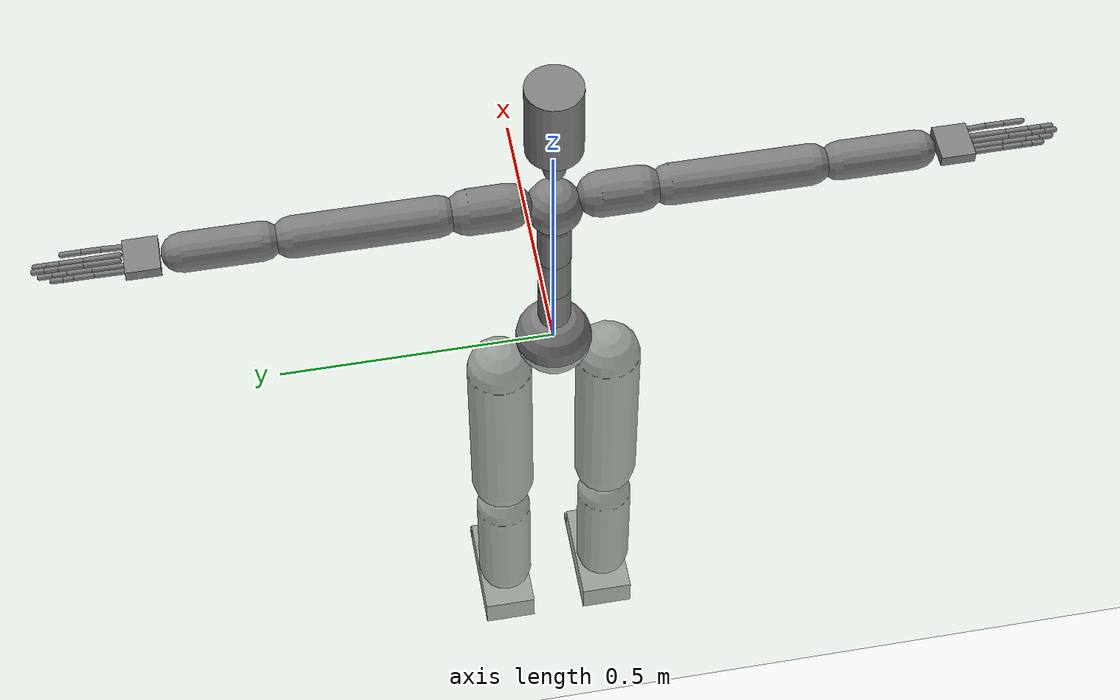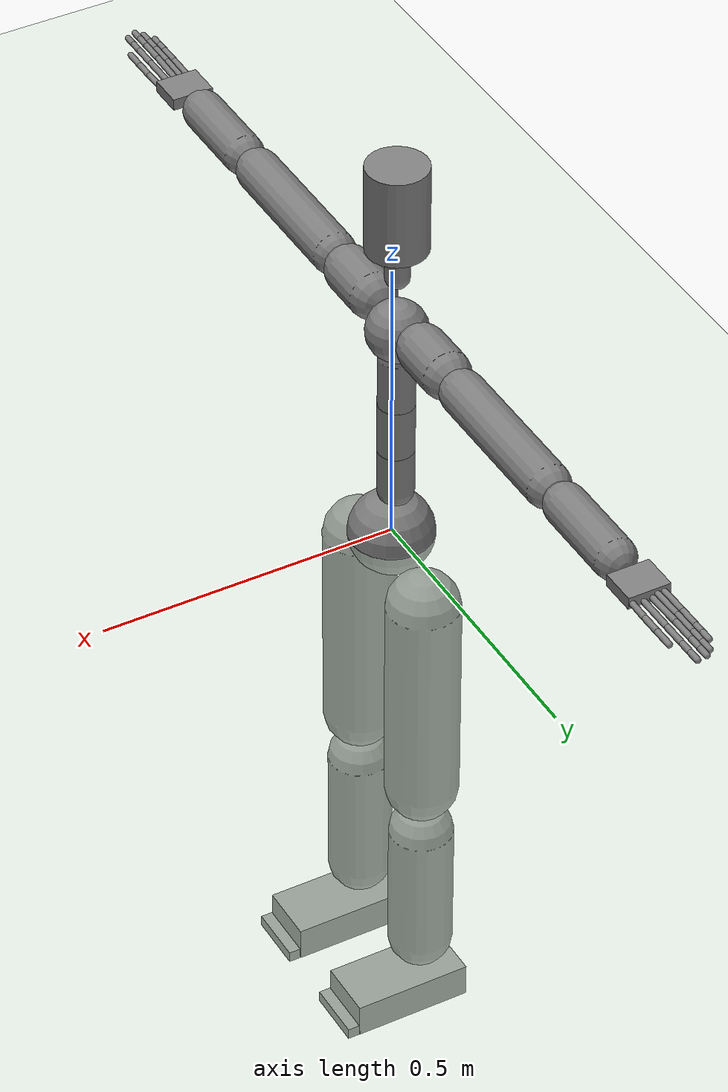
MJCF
<!-- change the damping from 50 to 500 -->
<mujoco model="humanoid">
  <compiler coordinate="local"/>
  <statistic extent="2" center="0 0 1"/>
  <option timestep="0.00555"/>
  <default>
    <motor ctrlrange="-1 1" ctrllimited="true"/>
    <geom type="capsule" condim="1" friction="1.0 0.05 0.05" solimp=".9 .99 .003" solref=".015 1"/>
    <joint type="hinge" damping="0.1" stiffness="5" armature=".007" limited="true" solimplimit="0 .99 .01"/>
    <site size=".04" group="3"/>
    <default class="force-torque">
      <site type="box" size=".01 .01 .02" rgba="1 0 0 1"/>
    </default>
    <default class="touch">
      <site type="capsule" rgba="0 0 1 .3"/>
    </default>
  </default>
  <asset>
    <texture type="skybox" builtin="gradient" rgb1=".4 .5 .6" rgb2="0 0 0" width="100" height="100"/>
    <texture builtin="flat" height="1278" mark="cross" markrgb="1 1 1" name="texgeom" random="0.01" rgb1="0.8 0.6 0.4" rgb2="0.8 0.6 0.4" type="cube" width="127"/>
    <texture builtin="checker" height="100" name="texplane" rgb1="0 0 0" rgb2="0.8 0.8 0.8" type="2d" width="100"/>
    <material name="MatPlane" reflectance="0.5" shininess="1" specular="1" texrepeat="60 60" texture="texplane"/>
    <material name="geom" texture="texgeom" texuniform="true"/>
  </asset>
  <worldbody>
    <light cutoff="100" diffuse="1 1 1" dir="-0 0 -1.3" directional="true" exponent="1" pos="0 0 1.3" specular=".1 .1 .1"/>
    <geom conaffinity="1" condim="3" name="floor" pos="0 0 0" rgba="0.8 0.9 0.8 1" size="100 100 .2" type="plane" material="MatPlane"/>
    <body name="pHipOrigin" pos="0 0 0">
      <freejoint name="pHipOrigin"/>
      <geom type="sphere" contype="1" conaffinity="1" density="4629.6296296296305" size="0.07011" pos="0.0000 0.0000 -0.0000"/>
      <body name="jL5S1" pos="-0.006892980970589783 0.0 0.062036653819790066">
        <geom type="capsule" contype="1" conaffinity="1" density="1000" fromto="0 0 0.02 0.0 0.0 0.09731791168451309" size="0.03"/>
        <joint name="jL5S1_x" type="hinge" pos="0 0 0" axis="1 0 0" stiffness="500" damping="500" armature="0.02" range="-180.0000 180.0000"/>
        <joint name="jL5S1_y" type="hinge" pos="0 0 0" axis="0 1 0" stiffness="500" damping="500" armature="0.02" range="-180.0000 180.0000"/>
        <joint name="jL5S1_z" type="hinge" pos="0 0 0" axis="0 0 1" stiffness="500" damping="500" armature="0.02" range="-180.0000 180.0000"/>
        <body name="jL4L3" pos="0.0 0.0 0.09731791168451309">
          <geom type="capsule" contype="1" conaffinity="1" density="1000" fromto="0 0 0 -0.0006850716177388439 0.0 0.08879742665058449" size="0.03"/>
          <joint name="jL4L3_x" type="hinge" pos="0 0 0" axis="1 0 0" stiffness="500" damping="500" armature="0.02" range="-180.0000 180.0000"/>
          <joint name="jL4L3_y" type="hinge" pos="0 0 0" axis="0 1 0" stiffness="500" damping="500" armature="0.02" range="-180.0000 180.0000"/>
          <joint name="jL4L3_z" type="hinge" pos="0 0 0" axis="0 0 1" stiffness="500" damping="500" armature="0.02" range="-180.0000 180.0000"/>
          <body name="jL1T12" pos="-0.0006850716177388439 0.0 0.08879742665058449">
            <geom type="capsule" contype="1" conaffinity="1" density="1000" fromto="0 0 0 -0.0006888228256989536 0.0 0.08911009664929612" size="0.03"/>
            <joint name="jL1T12_x" type="hinge" pos="0 0 0" axis="1 0 0" stiffness="500" damping="500" armature="0.02" range="-180.0000 180.0000"/>
            <joint name="jL1T12_y" type="hinge" pos="0 0 0" axis="0 1 0" stiffness="500" damping="500" armature="0.02" range="-180.0000 180.0000"/>
            <joint name="jL1T12_z" type="hinge" pos="0 0 0" axis="0 0 1" stiffness="500" damping="500" armature="0.02" range="-180.0000 180.0000"/>
            <body name="jT9T8" pos="-0.0006888228256989536 0.0 0.08911009664929612">
              <geom type="sphere" contype="1" conaffinity="1" density="1000" size="0.05011" pos="0.0000 0.0000 0.050000"/>
              <joint name="jT9T8_x" type="hinge" pos="0 0 0" axis="1 0 0" stiffness="500" damping="500" armature="0.02" range="-180.0000 180.0000"/>
              <joint name="jT9T8_y" type="hinge" pos="0 0 0" axis="0 1 0" stiffness="500" damping="500" armature="0.02" range="-180.0000 180.0000"/>
              <joint name="jT9T8_z" type="hinge" pos="0 0 0" axis="0 0 1" stiffness="500" damping="500" armature="0.02" range="-180.0000 180.0000"/>
              <body name="jT1C7" pos="0.0 0.0 0.12090200185775757">
                <geom type="capsule" contype="1" conaffinity="1" density="1000" fromto="0 0 0.03 0.0009755110367244263 0.0 0.0826871084277397" size="0.02"/>
                <joint name="jT1C7_x" type="hinge" pos="0 0 0" axis="1 0 0" stiffness="500" damping="500" armature="0.02" range="-180.0000 180.0000"/>
                <joint name="jT1C7_y" type="hinge" pos="0 0 0" axis="0 1 0" stiffness="500" damping="500" armature="0.02" range="-180.0000 180.0000"/>
                <joint name="jT1C7_z" type="hinge" pos="0 0 0" axis="0 0 1" stiffness="500" damping="500" armature="0.02" range="-180.0000 180.0000"/>
                <body name="jC1Head" pos="0.0009755110367244263 0.0 0.0826871084277397">
                  <geom type="cylinder" contype="1" conaffinity="1" density="1000" fromto="0 0 0 0 0 0.15" size="0.05"/>
                  <joint name="jC1Head_x" type="hinge" pos="0 0 0" axis="1 0 0" stiffness="500" damping="500" armature="0.02" range="-180.0000 180.0000"/>
                  <joint name="jC1Head_y" type="hinge" pos="0 0 0" axis="0 1 0" stiffness="500" damping="500" armature="0.02" range="-180.0000 180.0000"/>
                  <joint name="jC1Head_z" type="hinge" pos="0 0 0" axis="0 0 1" stiffness="500" damping="500" armature="0.02" range="-180.0000 180.0000"/>
                </body>
              </body>
              <body name="jRightT4Shoulder" pos="0.0 -0.027522961176730157 0.06710702015073665">
                <geom type="capsule" contype="1" conaffinity="1" density="1000" fromto="0 -0.05 0 0.0 -0.12130387872457504 0.0" size="0.04"/>
                <joint name="jRightT4Shoulder_x" type="hinge" pos="0 0 0" axis="1 0 0" stiffness="500" damping="500" armature="0.02" range="-180.0000 180.0000"/>
                <joint name="jRightT4Shoulder_y" type="hinge" pos="0 0 0" axis="0 1 0" stiffness="500" damping="500" armature="0.02" range="-180.0000 180.0000"/>
                <joint name="jRightT4Shoulder_z" type="hinge" pos="0 0 0" axis="0 0 1" stiffness="500" damping="500" armature="0.02" range="-180.0000 180.0000"/>
                <body name="jRightShoulder" pos="0.0 -0.12130387872457504 0.0">
                  <geom type="capsule" contype="1" conaffinity="1" density="1000" fromto="0 -0.05 0 0.0 -0.29600414633750916 0.0" size="0.036"/>
                  <joint name="jRightShoulder_x" type="hinge" pos="0 0 0" axis="1 0 0" stiffness="500" damping="500" armature="0.02" range="-180.0000 180.0000"/>
                  <joint name="jRightShoulder_y" type="hinge" pos="0 0 0" axis="0 1 0" stiffness="500" damping="500" armature="0.02" range="-180.0000 180.0000"/>
                  <joint name="jRightShoulder_z" type="hinge" pos="0 0 0" axis="0 0 1" stiffness="500" damping="500" armature="0.02" range="-180.0000 180.0000"/>
                  <body name="jRightElbow" pos="0.0 -0.29600414633750916 0.0">
                    <geom type="capsule" contype="1" conaffinity="1" density="1000" fromto="0 -0.05 0 0.0001012368585851264 -0.1855322618975339 0.0" size="0.034"/>
                    <joint name="jRightElbow_x" type="hinge" pos="0 0 0" axis="1 0 0" stiffness="500" damping="500" armature="0.02" range="-180.0000 180.0000"/>
                    <joint name="jRightElbow_y" type="hinge" pos="0 0 0" axis="0 1 0" stiffness="500" damping="500" armature="0.02" range="-180.0000 180.0000"/>
                    <joint name="jRightElbow_z" type="hinge" pos="0 0 0" axis="0 0 1" stiffness="500" damping="500" armature="0.02" range="-180.0000 180.0000"/>
                    <body name="jRightWrist" pos="0.0001012368585851264 -0.2515322618975339 0.0">
                      <geom density="1000" type="box" pos="0 0 0" size="0.035 0.03 0.01" quat="1.0 0 0 0"/>
                      <joint name="jRightWrist_x" type="hinge" pos="0 0 0" axis="1 0 0" stiffness="500" damping="500" armature="0.02" range="-180.0000 180.0000"/>
                      <joint name="jRightWrist_y" type="hinge" pos="0 0 0" axis="0 1 0" stiffness="500" damping="500" armature="0.02" range="-180.0000 180.0000"/>
                      <joint name="jRightWrist_z" type="hinge" pos="0 0 0" axis="0 0 1" stiffness="500" damping="500" armature="0.02" range="-180.0000 180.0000"/>
                      <body name="jRightFirstCMC" pos="0.029226627 -0.02801536 -0.0013235605">
                        <geom type="capsule" contype="1" conaffinity="1" density="1000" fromto="0 0 0 0.0013162021059542894 -0.03714235499501228 0.0007848155219107866" size="0.005"/>
                        <joint name="jRightFirstCMC_x" type="hinge" pos="0 0 0" axis="1 0 0" stiffness="500" damping="500" armature="0.02" range="-180.0000 180.0000"/>
                        <joint name="jRightFirstCMC_y" type="hinge" pos="0 0 0" axis="0 1 0" stiffness="500" damping="500" armature="0.02" range="-180.0000 180.0000"/>
                        <joint name="jRightFirstCMC_z" type="hinge" pos="0 0 0" axis="0 0 1" stiffness="500" damping="500" armature="0.02" range="-180.0000 180.0000"/>
                        <body name="jRightFirstMCP" pos="0.0013162021 -0.037142355 0.0007848155">
                          <geom type="capsule" contype="1" conaffinity="1" density="1000" fromto="0 0 0 0.0 -0.03266054391860962 0.0" size="0.005"/>
                          <joint name="jRightFirstMCP_x" type="hinge" pos="0 0 0" axis="1 0 0" stiffness="500" damping="500" armature="0.02" range="-180.0000 180.0000"/>
                          <joint name="jRightFirstMCP_y" type="hinge" pos="0 0 0" axis="0 1 0" stiffness="500" damping="500" armature="0.02" range="-180.0000 180.0000"/>
                          <joint name="jRightFirstMCP_z" type="hinge" pos="0 0 0" axis="0 0 1" stiffness="500" damping="500" armature="0.02" range="-180.0000 180.0000"/>
                          <body name="jRightIP" pos="0.0 -0.032660544 0.0">
                            <geom type="capsule" contype="1" conaffinity="1" density="1000" fromto="0 0 0 0.0 -0.03263826668262482 0.0" size="0.005"/>
                            <joint name="jRightIP_x" type="hinge" pos="0 0 0" axis="1 0 0" stiffness="500" damping="500" armature="0.02" range="-180.0000 180.0000"/>
                            <joint name="jRightIP_y" type="hinge" pos="0 0 0" axis="0 1 0" stiffness="500" damping="500" armature="0.02" range="-180.0000 180.0000"/>
                            <joint name="jRightIP_z" type="hinge" pos="0 0 0" axis="0 0 1" stiffness="500" damping="500" armature="0.02" range="-180.0000 180.0000"/>
                          </body>
                        </body>
                      </body>
                      <body name="jRightSecondCMC" pos="0.01238404 -0.036182247 -0.0006311062">
                        <geom type="capsule" contype="1" conaffinity="1" density="1000" fromto="0 0 0 -0.000377196935005486 -0.060160085558891296 -0.0006240594666451216" size="0.005"/>
                        <joint name="jRightSecondCMC_x" type="hinge" pos="0 0 0" axis="1 0 0" stiffness="500" damping="500" armature="0.02" range="-180.0000 180.0000"/>
                        <joint name="jRightSecondCMC_y" type="hinge" pos="0 0 0" axis="0 1 0" stiffness="500" damping="500" armature="0.02" range="-180.0000 180.0000"/>
                        <joint name="jRightSecondCMC_z" type="hinge" pos="0 0 0" axis="0 0 1" stiffness="500" damping="500" armature="0.02" range="-180.0000 180.0000"/>
                        <body name="jRightSecondMCP" pos="-0.00037719694 -0.060160086 -0.00062405947">
                          <geom type="capsule" contype="1" conaffinity="1" density="1000" fromto="0 0 0 0.0 -0.03974904865026474 0.0" size="0.005"/>
                          <joint name="jRightSecondMCP_x" type="hinge" pos="0 0 0" axis="1 0 0" stiffness="500" damping="500" armature="0.02" range="-180.0000 180.0000"/>
                          <joint name="jRightSecondMCP_y" type="hinge" pos="0 0 0" axis="0 1 0" stiffness="500" damping="500" armature="0.02" range="-180.0000 180.0000"/>
                          <joint name="jRightSecondMCP_z" type="hinge" pos="0 0 0" axis="0 0 1" stiffness="500" damping="500" armature="0.02" range="-180.0000 180.0000"/>
                          <body name="jRightSecondPIP" pos="0.0 -0.03974905 0.0">
                            <geom type="capsule" contype="1" conaffinity="1" density="1000" fromto="0 0 0 0.0 -0.02152673900127411 0.0" size="0.005"/>
                            <joint name="jRightSecondPIP_x" type="hinge" pos="0 0 0" axis="1 0 0" stiffness="500" damping="500" armature="0.02" range="-180.0000 180.0000"/>
                            <joint name="jRightSecondPIP_y" type="hinge" pos="0 0 0" axis="0 1 0" stiffness="500" damping="500" armature="0.02" range="-180.0000 180.0000"/>
                            <joint name="jRightSecondPIP_z" type="hinge" pos="0 0 0" axis="0 0 1" stiffness="500" damping="500" armature="0.02" range="-180.0000 180.0000"/>
                            <body name="jRightSecondDIP" pos="0.0 -0.021526739 0.0">
                              <geom type="capsule" contype="1" conaffinity="1" density="1000" fromto="0 0 0 0.0 -0.019350945949554443 0.0" size="0.005"/>
                              <joint name="jRightSecondDIP_x" type="hinge" pos="0 0 0" axis="1 0 0" stiffness="500" damping="500" armature="0.02" range="-180.0000 180.0000"/>
                              <joint name="jRightSecondDIP_y" type="hinge" pos="0 0 0" axis="0 1 0" stiffness="500" damping="500" armature="0.02" range="-180.0000 180.0000"/>
                              <joint name="jRightSecondDIP_z" type="hinge" pos="0 0 0" axis="0 0 1" stiffness="500" damping="500" armature="0.02" range="-180.0000 180.0000"/>
                            </body>
                          </body>
                        </body>
                      </body>
                      <body name="jRightThirdCMC" pos="-0.0007027056 -0.038000695 0.001597607">
                        <geom type="capsule" contype="1" conaffinity="1" density="1000" fromto="0 0 0 -0.0007040676428005099 -0.058332111686468124 0.0015869924100115895" size="0.005"/>
                        <joint name="jRightThirdCMC_x" type="hinge" pos="0 0 0" axis="1 0 0" stiffness="500" damping="500" armature="0.02" range="-180.0000 180.0000"/>
                        <joint name="jRightThirdCMC_y" type="hinge" pos="0 0 0" axis="0 1 0" stiffness="500" damping="500" armature="0.02" range="-180.0000 180.0000"/>
                        <joint name="jRightThirdCMC_z" type="hinge" pos="0 0 0" axis="0 0 1" stiffness="500" damping="500" armature="0.02" range="-180.0000 180.0000"/>
                        <body name="jRightThirdMCP" pos="-0.00070406764 -0.05833211 0.0015869924">
                          <geom type="capsule" contype="1" conaffinity="1" density="1000" fromto="0 0 0 0.0 -0.04177860915660858 0.0" size="0.005"/>
                          <joint name="jRightThirdMCP_x" type="hinge" pos="0 0 0" axis="1 0 0" stiffness="500" damping="500" armature="0.02" range="-180.0000 180.0000"/>
                          <joint name="jRightThirdMCP_y" type="hinge" pos="0 0 0" axis="0 1 0" stiffness="500" damping="500" armature="0.02" range="-180.0000 180.0000"/>
                          <joint name="jRightThirdMCP_z" type="hinge" pos="0 0 0" axis="0 0 1" stiffness="500" damping="500" armature="0.02" range="-180.0000 180.0000"/>
                          <body name="jRightThirdPIP" pos="0.0 -0.04177861 0.0">
                            <geom type="capsule" contype="1" conaffinity="1" density="1000" fromto="0 0 0 0.0 -0.022858262062072754 0.0" size="0.005"/>
                            <joint name="jRightThirdPIP_x" type="hinge" pos="0 0 0" axis="1 0 0" stiffness="500" damping="500" armature="0.02" range="-180.0000 180.0000"/>
                            <joint name="jRightThirdPIP_y" type="hinge" pos="0 0 0" axis="0 1 0" stiffness="500" damping="500" armature="0.02" range="-180.0000 180.0000"/>
                            <joint name="jRightThirdPIP_z" type="hinge" pos="0 0 0" axis="0 0 1" stiffness="500" damping="500" armature="0.02" range="-180.0000 180.0000"/>
                            <body name="jRightThirdDIP" pos="0.0 -0.022858262 0.0">
                              <geom type="capsule" contype="1" conaffinity="1" density="1000" fromto="0 0 0 0.0 -0.018166393041610718 0.0" size="0.005"/>
                              <joint name="jRightThirdDIP_x" type="hinge" pos="0 0 0" axis="1 0 0" stiffness="500" damping="500" armature="0.02" range="-180.0000 180.0000"/>
                              <joint name="jRightThirdDIP_y" type="hinge" pos="0 0 0" axis="0 1 0" stiffness="500" damping="500" armature="0.02" range="-180.0000 180.0000"/>
                              <joint name="jRightThirdDIP_z" type="hinge" pos="0 0 0" axis="0 0 1" stiffness="500" damping="500" armature="0.02" range="-180.0000 180.0000"/>
                            </body>
                          </body>
                        </body>
                      </body>
                      <body name="jRightFourthCMC" pos="-0.011695246 -0.032573193 0.00076672196">
                        <geom type="capsule" contype="1" conaffinity="1" density="1000" fromto="0 0 0 -0.0003711762255989015 -0.050873320549726486 0.0007992602186277509" size="0.005"/>
                        <joint name="jRightFourthCMC_x" type="hinge" pos="0 0 0" axis="1 0 0" stiffness="500" damping="500" armature="0.02" range="-180.0000 180.0000"/>
                        <joint name="jRightFourthCMC_y" type="hinge" pos="0 0 0" axis="0 1 0" stiffness="500" damping="500" armature="0.02" range="-180.0000 180.0000"/>
                        <joint name="jRightFourthCMC_z" type="hinge" pos="0 0 0" axis="0 0 1" stiffness="500" damping="500" armature="0.02" range="-180.0000 180.0000"/>
                        <body name="jRightFourthMCP" pos="-0.00037117623 -0.05087332 0.0007992602">
                          <geom type="capsule" contype="1" conaffinity="1" density="1000" fromto="0 0 0 0.0 -0.040961235761642456 0.0" size="0.005"/>
                          <joint name="jRightFourthMCP_x" type="hinge" pos="0 0 0" axis="1 0 0" stiffness="500" damping="500" armature="0.02" range="-180.0000 180.0000"/>
                          <joint name="jRightFourthMCP_y" type="hinge" pos="0 0 0" axis="0 1 0" stiffness="500" damping="500" armature="0.02" range="-180.0000 180.0000"/>
                          <joint name="jRightFourthMCP_z" type="hinge" pos="0 0 0" axis="0 0 1" stiffness="500" damping="500" armature="0.02" range="-180.0000 180.0000"/>
                          <body name="jRightFourthPIP" pos="0.0 -0.040961236 0.0">
                            <geom type="capsule" contype="1" conaffinity="1" density="1000" fromto="0 0 0 0.0 -0.024234309792518616 0.0" size="0.005"/>
                            <joint name="jRightFourthPIP_x" type="hinge" pos="0 0 0" axis="1 0 0" stiffness="500" damping="500" armature="0.02" range="-180.0000 180.0000"/>
                            <joint name="jRightFourthPIP_y" type="hinge" pos="0 0 0" axis="0 1 0" stiffness="500" damping="500" armature="0.02" range="-180.0000 180.0000"/>
                            <joint name="jRightFourthPIP_z" type="hinge" pos="0 0 0" axis="0 0 1" stiffness="500" damping="500" armature="0.02" range="-180.0000 180.0000"/>
                            <body name="jRightFourthDIP" pos="0.0 -0.02423431 0.0">
                              <geom type="capsule" contype="1" conaffinity="1" density="1000" fromto="0 0 0 0.0 -0.02049364149570465 0.0" size="0.005"/>
                              <joint name="jRightFourthDIP_x" type="hinge" pos="0 0 0" axis="1 0 0" stiffness="500" damping="500" armature="0.02" range="-180.0000 180.0000"/>
                              <joint name="jRightFourthDIP_y" type="hinge" pos="0 0 0" axis="0 1 0" stiffness="500" damping="500" armature="0.02" range="-180.0000 180.0000"/>
                              <joint name="jRightFourthDIP_z" type="hinge" pos="0 0 0" axis="0 0 1" stiffness="500" damping="500" armature="0.02" range="-180.0000 180.0000"/>
                            </body>
                          </body>
                        </body>
                      </body>
                      <body name="jRightFifthCMC" pos="-0.022654068 -0.03156586 0.000622693">
                        <geom type="capsule" contype="1" conaffinity="1" density="1000" fromto="0 0 0 -7.238904345285846e-06 -0.049009718000888824 0.0006744347047060728" size="0.005"/>
                        <joint name="jRightFifthCMC_x" type="hinge" pos="0 0 0" axis="1 0 0" stiffness="500" damping="500" armature="0.02" range="-180.0000 180.0000"/>
                        <joint name="jRightFifthCMC_y" type="hinge" pos="0 0 0" axis="0 1 0" stiffness="500" damping="500" armature="0.02" range="-180.0000 180.0000"/>
                        <joint name="jRightFifthCMC_z" type="hinge" pos="0 0 0" axis="0 0 1" stiffness="500" damping="500" armature="0.02" range="-180.0000 180.0000"/>
                        <body name="jRightFifthMCP" pos="-7.2389043e-06 -0.049009718 0.0006744347">
                          <geom type="capsule" contype="1" conaffinity="1" density="1000" fromto="0 0 0 0.0 -0.034168340265750885 0.0" size="0.005"/>
                          <joint name="jRightFifthMCP_x" type="hinge" pos="0 0 0" axis="1 0 0" stiffness="500" damping="500" armature="0.02" range="-180.0000 180.0000"/>
                          <joint name="jRightFifthMCP_y" type="hinge" pos="0 0 0" axis="0 1 0" stiffness="500" damping="500" armature="0.02" range="-180.0000 180.0000"/>
                          <joint name="jRightFifthMCP_z" type="hinge" pos="0 0 0" axis="0 0 1" stiffness="500" damping="500" armature="0.02" range="-180.0000 180.0000"/>
                          <body name="jRightFifthPIP" pos="0.0 -0.03416834 0.0">
                            <geom type="capsule" contype="1" conaffinity="1" density="1000" fromto="0 0 0 0.0 -0.017554305493831635 0.0" size="0.005"/>
                            <joint name="jRightFifthPIP_x" type="hinge" pos="0 0 0" axis="1 0 0" stiffness="500" damping="500" armature="0.02" range="-180.0000 180.0000"/>
                            <joint name="jRightFifthPIP_y" type="hinge" pos="0 0 0" axis="0 1 0" stiffness="500" damping="500" armature="0.02" range="-180.0000 180.0000"/>
                            <joint name="jRightFifthPIP_z" type="hinge" pos="0 0 0" axis="0 0 1" stiffness="500" damping="500" armature="0.02" range="-180.0000 180.0000"/>
                            <body name="jRightFifthDIP" pos="0.0 -0.017554305 0.0">
                              <geom type="capsule" contype="1" conaffinity="1" density="1000" fromto="0 0 0 0.0 -0.017666339874267578 0.0" size="0.005"/>
                              <joint name="jRightFifthDIP_x" type="hinge" pos="0 0 0" axis="1 0 0" stiffness="500" damping="500" armature="0.02" range="-180.0000 180.0000"/>
                              <joint name="jRightFifthDIP_y" type="hinge" pos="0 0 0" axis="0 1 0" stiffness="500" damping="500" armature="0.02" range="-180.0000 180.0000"/>
                              <joint name="jRightFifthDIP_z" type="hinge" pos="0 0 0" axis="0 0 1" stiffness="500" damping="500" armature="0.02" range="-180.0000 180.0000"/>
                            </body>
                          </body>
                        </body>
                      </body>
                    </body>
                  </body>
                </body>
              </body>
              <body name="jLeftT4Shoulder" pos="0.0 0.027563960912867527 0.06720698650615453">
                <geom type="capsule" contype="1" conaffinity="1" density="1000" fromto="0 0.05 0 0.0 0.12072624266147614 0.0" size="0.04"/>
                <joint name="jLeftT4Shoulder_x" type="hinge" pos="0 0 0" axis="1 0 0" stiffness="500" damping="500" armature="0.02" range="-180.0000 180.0000"/>
                <joint name="jLeftT4Shoulder_y" type="hinge" pos="0 0 0" axis="0 1 0" stiffness="500" damping="500" armature="0.02" range="-180.0000 180.0000"/>
                <joint name="jLeftT4Shoulder_z" type="hinge" pos="0 0 0" axis="0 0 1" stiffness="500" damping="500" armature="0.02" range="-180.0000 180.0000"/>
                <body name="jLeftShoulder" pos="0.0 0.12072624266147614 0.0">
                  <geom type="capsule" contype="1" conaffinity="1" density="1000" fromto="0 0.05 0 0.0 0.29724428057670593 0.0" size="0.036"/>
                  <joint name="jLeftShoulder_x" type="hinge" pos="0 0 0" axis="1 0 0" stiffness="500" damping="500" armature="0.02" range="-180.0000 180.0000"/>
                  <joint name="jLeftShoulder_y" type="hinge" pos="0 0 0" axis="0 1 0" stiffness="500" damping="500" armature="0.02" range="-180.0000 180.0000"/>
                  <joint name="jLeftShoulder_z" type="hinge" pos="0 0 0" axis="0 0 1" stiffness="500" damping="500" armature="0.02" range="-180.0000 180.0000"/>
                  <body name="jLeftElbow" pos="0.0 0.29724428057670593 0.0">
                    <geom type="capsule" contype="1" conaffinity="1" density="1000" fromto="0 0.05 0 0.00010137571103552629 0.1858772535478796 0.0" size="0.034"/>
                    <joint name="jLeftElbow_x" type="hinge" pos="0 0 0" axis="1 0 0" stiffness="500" damping="500" armature="0.02" range="-180.0000 180.0000"/>
                    <joint name="jLeftElbow_y" type="hinge" pos="0 0 0" axis="0 1 0" stiffness="500" damping="500" armature="0.02" range="-180.0000 180.0000"/>
                    <joint name="jLeftElbow_z" type="hinge" pos="0 0 0" axis="0 0 1" stiffness="500" damping="500" armature="0.02" range="-180.0000 180.0000"/>
                    <body name="jLeftWrist" pos="0.00010137571103552629 0.2518772535478796 0.0">
                      <geom density="1000" type="box" pos="0 0 0" size="0.035 0.03 0.01" quat="1.0 0 0 0"/>
                      <joint name="jLeftWrist_x" type="hinge" pos="0 0 0" axis="1 0 0" stiffness="500" damping="500" armature="0.02" range="-180.0000 180.0000"/>
                      <joint name="jLeftWrist_y" type="hinge" pos="0 0 0" axis="0 1 0" stiffness="500" damping="500" armature="0.02" range="-180.0000 180.0000"/>
                      <joint name="jLeftWrist_z" type="hinge" pos="0 0 0" axis="0 0 1" stiffness="500" damping="500" armature="0.02" range="-180.0000 180.0000"/>
                      <body name="jLeftFirstCMC" pos="0.028605983 0.028673539 -0.0012803096">
                        <geom type="capsule" contype="1" conaffinity="1" density="1000" fromto="0 0 0 0.001303523313254118 0.03714151680469513 0.0007648329483345151" size="0.005"/>
                        <joint name="jLeftFirstCMC_x" type="hinge" pos="0 0 0" axis="1 0 0" stiffness="500" damping="500" armature="0.02" range="-180.0000 180.0000"/>
                        <joint name="jLeftFirstCMC_y" type="hinge" pos="0 0 0" axis="0 1 0" stiffness="500" damping="500" armature="0.02" range="-180.0000 180.0000"/>
                        <joint name="jLeftFirstCMC_z" type="hinge" pos="0 0 0" axis="0 0 1" stiffness="500" damping="500" armature="0.02" range="-180.0000 180.0000"/>
                        <body name="jLeftFirstMCP" pos="0.0013035233 0.037141517 0.00076483295">
                          <geom type="capsule" contype="1" conaffinity="1" density="1000" fromto="0 0 0 0.0 0.03266054391860962 0.0" size="0.005"/>
                          <joint name="jLeftFirstMCP_x" type="hinge" pos="0 0 0" axis="1 0 0" stiffness="500" damping="500" armature="0.02" range="-180.0000 180.0000"/>
                          <joint name="jLeftFirstMCP_y" type="hinge" pos="0 0 0" axis="0 1 0" stiffness="500" damping="500" armature="0.02" range="-180.0000 180.0000"/>
                          <joint name="jLeftFirstMCP_z" type="hinge" pos="0 0 0" axis="0 0 1" stiffness="500" damping="500" armature="0.02" range="-180.0000 180.0000"/>
                          <body name="jLeftIP" pos="0.0 0.032660544 0.0">
                            <geom type="capsule" contype="1" conaffinity="1" density="1000" fromto="0 0 0 0.0 0.03263826668262482 0.0" size="0.005"/>
                            <joint name="jLeftIP_x" type="hinge" pos="0 0 0" axis="1 0 0" stiffness="500" damping="500" armature="0.02" range="-180.0000 180.0000"/>
                            <joint name="jLeftIP_y" type="hinge" pos="0 0 0" axis="0 1 0" stiffness="500" damping="500" armature="0.02" range="-180.0000 180.0000"/>
                            <joint name="jLeftIP_z" type="hinge" pos="0 0 0" axis="0 0 1" stiffness="500" damping="500" armature="0.02" range="-180.0000 180.0000"/>
                          </body>
                        </body>
                      </body>
                      <body name="jLeftSecondCMC" pos="0.0125266835 0.036115672 -0.0006363178">
                        <geom type="capsule" contype="1" conaffinity="1" density="1000" fromto="0 0 0 -0.00032889077556319535 0.06016131862998009 -0.0006317687220871449" size="0.005"/>
                        <joint name="jLeftSecondCMC_x" type="hinge" pos="0 0 0" axis="1 0 0" stiffness="500" damping="500" armature="0.02" range="-180.0000 180.0000"/>
                        <joint name="jLeftSecondCMC_y" type="hinge" pos="0 0 0" axis="0 1 0" stiffness="500" damping="500" armature="0.02" range="-180.0000 180.0000"/>
                        <joint name="jLeftSecondCMC_z" type="hinge" pos="0 0 0" axis="0 0 1" stiffness="500" damping="500" armature="0.02" range="-180.0000 180.0000"/>
                        <body name="jLeftSecondMCP" pos="-0.00032889078 0.06016132 -0.0006317687">
                          <geom type="capsule" contype="1" conaffinity="1" density="1000" fromto="0 0 0 0.0 0.03974904865026474 0.0" size="0.005"/>
                          <joint name="jLeftSecondMCP_x" type="hinge" pos="0 0 0" axis="1 0 0" stiffness="500" damping="500" armature="0.02" range="-180.0000 180.0000"/>
                          <joint name="jLeftSecondMCP_y" type="hinge" pos="0 0 0" axis="0 1 0" stiffness="500" damping="500" armature="0.02" range="-180.0000 180.0000"/>
                          <joint name="jLeftSecondMCP_z" type="hinge" pos="0 0 0" axis="0 0 1" stiffness="500" damping="500" armature="0.02" range="-180.0000 180.0000"/>
                          <body name="jLeftSecondPIP" pos="0.0 0.03974905 0.0">
                            <geom type="capsule" contype="1" conaffinity="1" density="1000" fromto="0 0 0 0.0 0.02152673900127411 0.0" size="0.005"/>
                            <joint name="jLeftSecondPIP_x" type="hinge" pos="0 0 0" axis="1 0 0" stiffness="500" damping="500" armature="0.02" range="-180.0000 180.0000"/>
                            <joint name="jLeftSecondPIP_y" type="hinge" pos="0 0 0" axis="0 1 0" stiffness="500" damping="500" armature="0.02" range="-180.0000 180.0000"/>
                            <joint name="jLeftSecondPIP_z" type="hinge" pos="0 0 0" axis="0 0 1" stiffness="500" damping="500" armature="0.02" range="-180.0000 180.0000"/>
                            <body name="jLeftSecondDIP" pos="0.0 0.021526739 0.0">
                              <geom type="capsule" contype="1" conaffinity="1" density="1000" fromto="0 0 0 0.0 0.019350945949554443 0.0" size="0.005"/>
                              <joint name="jLeftSecondDIP_x" type="hinge" pos="0 0 0" axis="1 0 0" stiffness="500" damping="500" armature="0.02" range="-180.0000 180.0000"/>
                              <joint name="jLeftSecondDIP_y" type="hinge" pos="0 0 0" axis="0 1 0" stiffness="500" damping="500" armature="0.02" range="-180.0000 180.0000"/>
                              <joint name="jLeftSecondDIP_z" type="hinge" pos="0 0 0" axis="0 0 1" stiffness="500" damping="500" armature="0.02" range="-180.0000 180.0000"/>
                            </body>
                          </body>
                        </body>
                      </body>
                      <body name="jLeftThirdCMC" pos="-0.00070683105 0.038004108 0.001544353">
                        <geom type="capsule" contype="1" conaffinity="1" density="1000" fromto="0 0 0 -0.0007097505731508136 0.05833324417471886 0.0015550878597423434" size="0.005"/>
                        <joint name="jLeftThirdCMC_x" type="hinge" pos="0 0 0" axis="1 0 0" stiffness="500" damping="500" armature="0.02" range="-180.0000 180.0000"/>
                        <joint name="jLeftThirdCMC_y" type="hinge" pos="0 0 0" axis="0 1 0" stiffness="500" damping="500" armature="0.02" range="-180.0000 180.0000"/>
                        <joint name="jLeftThirdCMC_z" type="hinge" pos="0 0 0" axis="0 0 1" stiffness="500" damping="500" armature="0.02" range="-180.0000 180.0000"/>
                        <body name="jLeftThirdMCP" pos="-0.0007097506 0.058333244 0.0015550879">
                          <geom type="capsule" contype="1" conaffinity="1" density="1000" fromto="0 0 0 0.0 0.04177860915660858 0.0" size="0.005"/>
                          <joint name="jLeftThirdMCP_x" type="hinge" pos="0 0 0" axis="1 0 0" stiffness="500" damping="500" armature="0.02" range="-180.0000 180.0000"/>
                          <joint name="jLeftThirdMCP_y" type="hinge" pos="0 0 0" axis="0 1 0" stiffness="500" damping="500" armature="0.02" range="-180.0000 180.0000"/>
                          <joint name="jLeftThirdMCP_z" type="hinge" pos="0 0 0" axis="0 0 1" stiffness="500" damping="500" armature="0.02" range="-180.0000 180.0000"/>
                          <body name="jLeftThirdPIP" pos="0.0 0.04177861 0.0">
                            <geom type="capsule" contype="1" conaffinity="1" density="1000" fromto="0 0 0 0.0 0.022858262062072754 0.0" size="0.005"/>
                            <joint name="jLeftThirdPIP_x" type="hinge" pos="0 0 0" axis="1 0 0" stiffness="500" damping="500" armature="0.02" range="-180.0000 180.0000"/>
                            <joint name="jLeftThirdPIP_y" type="hinge" pos="0 0 0" axis="0 1 0" stiffness="500" damping="500" armature="0.02" range="-180.0000 180.0000"/>
                            <joint name="jLeftThirdPIP_z" type="hinge" pos="0 0 0" axis="0 0 1" stiffness="500" damping="500" armature="0.02" range="-180.0000 180.0000"/>
                            <body name="jLeftThirdDIP" pos="0.0 0.022858262 0.0">
                              <geom type="capsule" contype="1" conaffinity="1" density="1000" fromto="0 0 0 0.0 0.018166393041610718 0.0" size="0.005"/>
                              <joint name="jLeftThirdDIP_x" type="hinge" pos="0 0 0" axis="1 0 0" stiffness="500" damping="500" armature="0.02" range="-180.0000 180.0000"/>
                              <joint name="jLeftThirdDIP_y" type="hinge" pos="0 0 0" axis="0 1 0" stiffness="500" damping="500" armature="0.02" range="-180.0000 180.0000"/>
                              <joint name="jLeftThirdDIP_z" type="hinge" pos="0 0 0" axis="0 0 1" stiffness="500" damping="500" armature="0.02" range="-180.0000 180.0000"/>
                            </body>
                          </body>
                        </body>
                      </body>
                      <body name="jLeftFourthCMC" pos="-0.012124385 0.03240658 0.00081846846">
                        <geom type="capsule" contype="1" conaffinity="1" density="1000" fromto="0 0 0 -0.0003991656703874469 0.05087040737271309 0.000845309637952596" size="0.005"/>
                        <joint name="jLeftFourthCMC_x" type="hinge" pos="0 0 0" axis="1 0 0" stiffness="500" damping="500" armature="0.02" range="-180.0000 180.0000"/>
                        <joint name="jLeftFourthCMC_y" type="hinge" pos="0 0 0" axis="0 1 0" stiffness="500" damping="500" armature="0.02" range="-180.0000 180.0000"/>
                        <joint name="jLeftFourthCMC_z" type="hinge" pos="0 0 0" axis="0 0 1" stiffness="500" damping="500" armature="0.02" range="-180.0000 180.0000"/>
                        <body name="jLeftFourthMCP" pos="-0.00039916567 0.050870407 0.00084530964">
                          <geom type="capsule" contype="1" conaffinity="1" density="1000" fromto="0 0 0 0.0 0.040961235761642456 0.0" size="0.005"/>
                          <joint name="jLeftFourthMCP_x" type="hinge" pos="0 0 0" axis="1 0 0" stiffness="500" damping="500" armature="0.02" range="-180.0000 180.0000"/>
                          <joint name="jLeftFourthMCP_y" type="hinge" pos="0 0 0" axis="0 1 0" stiffness="500" damping="500" armature="0.02" range="-180.0000 180.0000"/>
                          <joint name="jLeftFourthMCP_z" type="hinge" pos="0 0 0" axis="0 0 1" stiffness="500" damping="500" armature="0.02" range="-180.0000 180.0000"/>
                          <body name="jLeftFourthPIP" pos="0.0 0.040961236 0.0">
                            <geom type="capsule" contype="1" conaffinity="1" density="1000" fromto="0 0 0 0.0 0.024234309792518616 0.0" size="0.005"/>
                            <joint name="jLeftFourthPIP_x" type="hinge" pos="0 0 0" axis="1 0 0" stiffness="500" damping="500" armature="0.02" range="-180.0000 180.0000"/>
                            <joint name="jLeftFourthPIP_y" type="hinge" pos="0 0 0" axis="0 1 0" stiffness="500" damping="500" armature="0.02" range="-180.0000 180.0000"/>
                            <joint name="jLeftFourthPIP_z" type="hinge" pos="0 0 0" axis="0 0 1" stiffness="500" damping="500" armature="0.02" range="-180.0000 180.0000"/>
                            <body name="jLeftFourthDIP" pos="0.0 0.02423431 0.0">
                              <geom type="capsule" contype="1" conaffinity="1" density="1000" fromto="0 0 0 0.0 0.02049364149570465 0.0" size="0.005"/>
                              <joint name="jLeftFourthDIP_x" type="hinge" pos="0 0 0" axis="1 0 0" stiffness="500" damping="500" armature="0.02" range="-180.0000 180.0000"/>
                              <joint name="jLeftFourthDIP_y" type="hinge" pos="0 0 0" axis="0 1 0" stiffness="500" damping="500" armature="0.02" range="-180.0000 180.0000"/>
                              <joint name="jLeftFourthDIP_z" type="hinge" pos="0 0 0" axis="0 0 1" stiffness="500" damping="500" armature="0.02" range="-180.0000 180.0000"/>
                            </body>
                          </body>
                        </body>
                      </body>
                      <body name="jLeftFifthCMC" pos="-0.023340346 0.03106683 0.0006327018">
                        <geom type="capsule" contype="1" conaffinity="1" density="1000" fromto="0 0 0 -1.3898984434490558e-05 0.049008384346961975 0.0007051997818052769" size="0.005"/>
                        <joint name="jLeftFifthCMC_x" type="hinge" pos="0 0 0" axis="1 0 0" stiffness="500" damping="500" armature="0.02" range="-180.0000 180.0000"/>
                        <joint name="jLeftFifthCMC_y" type="hinge" pos="0 0 0" axis="0 1 0" stiffness="500" damping="500" armature="0.02" range="-180.0000 180.0000"/>
                        <joint name="jLeftFifthCMC_z" type="hinge" pos="0 0 0" axis="0 0 1" stiffness="500" damping="500" armature="0.02" range="-180.0000 180.0000"/>
                        <body name="jLeftFifthMCP" pos="-1.3898984e-05 0.049008384 0.0007051998">
                          <geom type="capsule" contype="1" conaffinity="1" density="1000" fromto="0 0 0 0.0 0.034168340265750885 0.0" size="0.005"/>
                          <joint name="jLeftFifthMCP_x" type="hinge" pos="0 0 0" axis="1 0 0" stiffness="500" damping="500" armature="0.02" range="-180.0000 180.0000"/>
                          <joint name="jLeftFifthMCP_y" type="hinge" pos="0 0 0" axis="0 1 0" stiffness="500" damping="500" armature="0.02" range="-180.0000 180.0000"/>
                          <joint name="jLeftFifthMCP_z" type="hinge" pos="0 0 0" axis="0 0 1" stiffness="500" damping="500" armature="0.02" range="-180.0000 180.0000"/>
                          <body name="jLeftFifthPIP" pos="0.0 0.03416834 0.0">
                            <geom type="capsule" contype="1" conaffinity="1" density="1000" fromto="0 0 0 0.0 0.017554305493831635 0.0" size="0.005"/>
                            <joint name="jLeftFifthPIP_x" type="hinge" pos="0 0 0" axis="1 0 0" stiffness="500" damping="500" armature="0.02" range="-180.0000 180.0000"/>
                            <joint name="jLeftFifthPIP_y" type="hinge" pos="0 0 0" axis="0 1 0" stiffness="500" damping="500" armature="0.02" range="-180.0000 180.0000"/>
                            <joint name="jLeftFifthPIP_z" type="hinge" pos="0 0 0" axis="0 0 1" stiffness="500" damping="500" armature="0.02" range="-180.0000 180.0000"/>
                            <body name="jLeftFifthDIP" pos="0.0 0.017554305 0.0">
                              <geom type="capsule" contype="1" conaffinity="1" density="1000" fromto="0 0 0 0.0 0.017666339874267578 0.0" size="0.005"/>
                              <joint name="jLeftFifthDIP_x" type="hinge" pos="0 0 0" axis="1 0 0" stiffness="500" damping="500" armature="0.02" range="-180.0000 180.0000"/>
                              <joint name="jLeftFifthDIP_y" type="hinge" pos="0 0 0" axis="0 1 0" stiffness="500" damping="500" armature="0.02" range="-180.0000 180.0000"/>
                              <joint name="jLeftFifthDIP_z" type="hinge" pos="0 0 0" axis="0 0 1" stiffness="500" damping="500" armature="0.02" range="-180.0000 180.0000"/>
                            </body>
                          </body>
                        </body>
                      </body>
                    </body>
                  </body>
                </body>
              </body>
            </body>
          </body>
        </body>
      </body>
      <body name="jRightHip" pos="-0.0001725227446082331 -0.10238340228763297 0.001553125310149528">
        <geom type="capsule" contype="1" conaffinity="1" density="2040.816327" fromto="0 0 -0.08 5.410275772078282e-05 0.0 -0.453761186342188" size="0.0605"/>
        <joint name="jRightHip_x" type="hinge" pos="0 0 0" axis="1 0 0" stiffness="500" damping="500" armature="0.02" range="-180.0000 180.0000"/>
        <joint name="jRightHip_y" type="hinge" pos="0 0 0" axis="0 1 0" stiffness="500" damping="500" armature="0.02" range="-180.0000 180.0000"/>
        <joint name="jRightHip_z" type="hinge" pos="0 0 0" axis="0 0 1" stiffness="500" damping="500" armature="0.02" range="-180.0000 180.0000"/>
        <body name="jRightKnee" pos="5.410275772078282e-05 0.0 -0.453761186342188">
          <geom type="capsule" contype="1" conaffinity="1" density="1234.567901" fromto="0 0 -0.1 0.00044789415159260447 0.0 -0.33266673323217893" size="0.0533"/>
          <joint name="jRightKnee_x" type="hinge" pos="0 0 0" axis="1 0 0" stiffness="500" damping="500" armature="0.02" range="-180.0000 180.0000"/>
          <joint name="jRightKnee_y" type="hinge" pos="0 0 0" axis="0 1 0" stiffness="500" damping="500" armature="0.02" range="-180.0000 180.0000"/>
          <joint name="jRightKnee_z" type="hinge" pos="0 0 0" axis="0 0 1" stiffness="500" damping="500" armature="0.02" range="-180.0000 180.0000"/>
          <body name="jRightAnkle" pos="0.00044789415159260447 0.0 -0.39666673323217894">
            <geom density="1000" type="box" pos="0.04 0 -0.03" size="0.1 0.05 0.03" quat="1.0 0 0 0"/>
            <joint name="jRightAnkle_x" type="hinge" pos="0 0 0" axis="1 0 0" stiffness="500" damping="500" armature="0.02" range="-180.0000 180.0000"/>
            <joint name="jRightAnkle_y" type="hinge" pos="0 0 0" axis="0 1 0" stiffness="500" damping="500" armature="0.02" range="-180.0000 180.0000"/>
            <joint name="jRightAnkle_z" type="hinge" pos="0 0 0" axis="0 0 1" stiffness="500" damping="500" armature="0.02" range="-180.0000 180.0000"/>
            <body name="jRightBallFoot" pos="0.15105565475797983 0.0 -0.06929844958362151">
              <geom density="1000" type="box" pos="0 0 0.02" size="0.01 0.05 0.01" quat="1.0 0 0 0"/>
              <joint name="jRightBallFoot_x" type="hinge" pos="0 0 0" axis="1 0 0" stiffness="500" damping="500" armature="0.02" range="-180.0000 180.0000"/>
              <joint name="jRightBallFoot_y" type="hinge" pos="0 0 0" axis="0 1 0" stiffness="500" damping="500" armature="0.02" range="-180.0000 180.0000"/>
              <joint name="jRightBallFoot_z" type="hinge" pos="0 0 0" axis="0 0 1" stiffness="500" damping="500" armature="0.02" range="-180.0000 180.0000"/>
            </body>
          </body>
        </body>
      </body>
      <body name="jLeftHip" pos="-0.00016901186108887823 0.10160948168537295 0.001520998024899927">
        <geom type="capsule" contype="1" conaffinity="1" density="2040.816327" fromto="0 0 -0.08 5.408726496582538e-05 0.0 -0.4536312482176755" size="0.0605"/>
        <joint name="jLeftHip_x" type="hinge" pos="0 0 0" axis="1 0 0" stiffness="500" damping="500" armature="0.02" range="-180.0000 180.0000"/>
        <joint name="jLeftHip_y" type="hinge" pos="0 0 0" axis="0 1 0" stiffness="500" damping="500" armature="0.02" range="-180.0000 180.0000"/>
        <joint name="jLeftHip_z" type="hinge" pos="0 0 0" axis="0 0 1" stiffness="500" damping="500" armature="0.02" range="-180.0000 180.0000"/>
        <body name="jLeftKnee" pos="5.408726496582538e-05 0.0 -0.4536312482176755">
          <geom type="capsule" contype="1" conaffinity="1" density="1234.567901" fromto="0 0 -0.1 0.00044789415159260447 0.0 -0.33266673323217893" size="0.0533"/>
          <joint name="jLeftKnee_x" type="hinge" pos="0 0 0" axis="1 0 0" stiffness="500" damping="500" armature="0.02" range="-180.0000 180.0000"/>
          <joint name="jLeftKnee_y" type="hinge" pos="0 0 0" axis="0 1 0" stiffness="500" damping="500" armature="0.02" range="-180.0000 180.0000"/>
          <joint name="jLeftKnee_z" type="hinge" pos="0 0 0" axis="0 0 1" stiffness="500" damping="500" armature="0.02" range="-180.0000 180.0000"/>
          <body name="jLeftAnkle" pos="0.00044789415159260447 0.0 -0.39666673323217894">
            <geom density="1000" type="box" pos="0.04 0 -0.03" size="0.1 0.05 0.03" quat="1.0 0 0 0"/>
            <joint name="jLeftAnkle_x" type="hinge" pos="0 0 0" axis="1 0 0" stiffness="500" damping="500" armature="0.02" range="-180.0000 180.0000"/>
            <joint name="jLeftAnkle_y" type="hinge" pos="0 0 0" axis="0 1 0" stiffness="500" damping="500" armature="0.02" range="-180.0000 180.0000"/>
            <joint name="jLeftAnkle_z" type="hinge" pos="0 0 0" axis="0 0 1" stiffness="500" damping="500" armature="0.02" range="-180.0000 180.0000"/>
            <body name="jLeftBallFoot" pos="0.15105565475797983 0.0 -0.06929844958362151">
              <geom density="1000" type="box" pos="0 0 0.02" size="0.01 0.05 0.01" quat="1.0 0 0 0"/>
              <joint name="jLeftBallFoot_x" type="hinge" pos="0 0 0" axis="1 0 0" stiffness="500" damping="500" armature="0.02" range="-180.0000 180.0000"/>
              <joint name="jLeftBallFoot_y" type="hinge" pos="0 0 0" axis="0 1 0" stiffness="500" damping="500" armature="0.02" range="-180.0000 180.0000"/>
              <joint name="jLeftBallFoot_z" type="hinge" pos="0 0 0" axis="0 0 1" stiffness="500" damping="500" armature="0.02" range="-180.0000 180.0000"/>
            </body>
          </body>
        </body>
      </body>
    </body>
  </worldbody>
  <actuator>
    <motor name="jL5S1_x" joint="jL5S1_x" gear="500"/>
    <motor name="jL5S1_y" joint="jL5S1_y" gear="500"/>
    <motor name="jL5S1_z" joint="jL5S1_z" gear="500"/>
    <motor name="jRightHip_x" joint="jRightHip_x" gear="500"/>
    <motor name="jRightHip_y" joint="jRightHip_y" gear="500"/>
    <motor name="jRightHip_z" joint="jRightHip_z" gear="500"/>
    <motor name="jLeftHip_x" joint="jLeftHip_x" gear="500"/>
    <motor name="jLeftHip_y" joint="jLeftHip_y" gear="500"/>
    <motor name="jLeftHip_z" joint="jLeftHip_z" gear="500"/>
    <motor name="jL4L3_x" joint="jL4L3_x" gear="500"/>
    <motor name="jL4L3_y" joint="jL4L3_y" gear="500"/>
    <motor name="jL4L3_z" joint="jL4L3_z" gear="500"/>
    <motor name="jL1T12_x" joint="jL1T12_x" gear="500"/>
    <motor name="jL1T12_y" joint="jL1T12_y" gear="500"/>
    <motor name="jL1T12_z" joint="jL1T12_z" gear="500"/>
    <motor name="jT9T8_x" joint="jT9T8_x" gear="500"/>
    <motor name="jT9T8_y" joint="jT9T8_y" gear="500"/>
    <motor name="jT9T8_z" joint="jT9T8_z" gear="500"/>
    <motor name="jT1C7_x" joint="jT1C7_x" gear="500"/>
    <motor name="jT1C7_y" joint="jT1C7_y" gear="500"/>
    <motor name="jT1C7_z" joint="jT1C7_z" gear="500"/>
    <motor name="jRightT4Shoulder_x" joint="jRightT4Shoulder_x" gear="500"/>
    <motor name="jRightT4Shoulder_y" joint="jRightT4Shoulder_y" gear="500"/>
    <motor name="jRightT4Shoulder_z" joint="jRightT4Shoulder_z" gear="500"/>
    <motor name="jLeftT4Shoulder_x" joint="jLeftT4Shoulder_x" gear="500"/>
    <motor name="jLeftT4Shoulder_y" joint="jLeftT4Shoulder_y" gear="500"/>
    <motor name="jLeftT4Shoulder_z" joint="jLeftT4Shoulder_z" gear="500"/>
    <motor name="jC1Head_x" joint="jC1Head_x" gear="500"/>
    <motor name="jC1Head_y" joint="jC1Head_y" gear="500"/>
    <motor name="jC1Head_z" joint="jC1Head_z" gear="500"/>
    <motor name="jRightShoulder_x" joint="jRightShoulder_x" gear="500"/>
    <motor name="jRightShoulder_y" joint="jRightShoulder_y" gear="500"/>
    <motor name="jRightShoulder_z" joint="jRightShoulder_z" gear="500"/>
    <motor name="jRightElbow_x" joint="jRightElbow_x" gear="500"/>
    <motor name="jRightElbow_y" joint="jRightElbow_y" gear="500"/>
    <motor name="jRightElbow_z" joint="jRightElbow_z" gear="500"/>
    <motor name="jRightWrist_x" joint="jRightWrist_x" gear="500"/>
    <motor name="jRightWrist_y" joint="jRightWrist_y" gear="500"/>
    <motor name="jRightWrist_z" joint="jRightWrist_z" gear="500"/>
    <motor name="jLeftShoulder_x" joint="jLeftShoulder_x" gear="500"/>
    <motor name="jLeftShoulder_y" joint="jLeftShoulder_y" gear="500"/>
    <motor name="jLeftShoulder_z" joint="jLeftShoulder_z" gear="500"/>
    <motor name="jLeftElbow_x" joint="jLeftElbow_x" gear="500"/>
    <motor name="jLeftElbow_y" joint="jLeftElbow_y" gear="500"/>
    <motor name="jLeftElbow_z" joint="jLeftElbow_z" gear="500"/>
    <motor name="jLeftWrist_x" joint="jLeftWrist_x" gear="500"/>
    <motor name="jLeftWrist_y" joint="jLeftWrist_y" gear="500"/>
    <motor name="jLeftWrist_z" joint="jLeftWrist_z" gear="500"/>
    <motor name="jRightKnee_x" joint="jRightKnee_x" gear="500"/>
    <motor name="jRightKnee_y" joint="jRightKnee_y" gear="500"/>
    <motor name="jRightKnee_z" joint="jRightKnee_z" gear="500"/>
    <motor name="jRightAnkle_x" joint="jRightAnkle_x" gear="500"/>
    <motor name="jRightAnkle_y" joint="jRightAnkle_y" gear="500"/>
    <motor name="jRightAnkle_z" joint="jRightAnkle_z" gear="500"/>
    <motor name="jRightBallFoot_x" joint="jRightBallFoot_x" gear="500"/>
    <motor name="jRightBallFoot_y" joint="jRightBallFoot_y" gear="500"/>
    <motor name="jRightBallFoot_z" joint="jRightBallFoot_z" gear="500"/>
    <motor name="jLeftKnee_x" joint="jLeftKnee_x" gear="500"/>
    <motor name="jLeftKnee_y" joint="jLeftKnee_y" gear="500"/>
    <motor name="jLeftKnee_z" joint="jLeftKnee_z" gear="500"/>
    <motor name="jLeftAnkle_x" joint="jLeftAnkle_x" gear="500"/>
    <motor name="jLeftAnkle_y" joint="jLeftAnkle_y" gear="500"/>
    <motor name="jLeftAnkle_z" joint="jLeftAnkle_z" gear="500"/>
    <motor name="jLeftBallFoot_x" joint="jLeftBallFoot_x" gear="500"/>
    <motor name="jLeftBallFoot_y" joint="jLeftBallFoot_y" gear="500"/>
    <motor name="jLeftBallFoot_z" joint="jLeftBallFoot_z" gear="500"/>
    <motor name="jLeftFirstCMC_x" joint="jLeftFirstCMC_x" gear="500"/>
    <motor name="jLeftFirstCMC_y" joint="jLeftFirstCMC_y" gear="500"/>
    <motor name="jLeftFirstCMC_z" joint="jLeftFirstCMC_z" gear="500"/>
    <motor name="jLeftSecondCMC_x" joint="jLeftSecondCMC_x" gear="500"/>
    <motor name="jLeftSecondCMC_y" joint="jLeftSecondCMC_y" gear="500"/>
    <motor name="jLeftSecondCMC_z" joint="jLeftSecondCMC_z" gear="500"/>
    <motor name="jLeftThirdCMC_x" joint="jLeftThirdCMC_x" gear="500"/>
    <motor name="jLeftThirdCMC_y" joint="jLeftThirdCMC_y" gear="500"/>
    <motor name="jLeftThirdCMC_z" joint="jLeftThirdCMC_z" gear="500"/>
    <motor name="jLeftFourthCMC_x" joint="jLeftFourthCMC_x" gear="500"/>
    <motor name="jLeftFourthCMC_y" joint="jLeftFourthCMC_y" gear="500"/>
    <motor name="jLeftFourthCMC_z" joint="jLeftFourthCMC_z" gear="500"/>
    <motor name="jLeftFifthCMC_x" joint="jLeftFifthCMC_x" gear="500"/>
    <motor name="jLeftFifthCMC_y" joint="jLeftFifthCMC_y" gear="500"/>
    <motor name="jLeftFifthCMC_z" joint="jLeftFifthCMC_z" gear="500"/>
    <motor name="jLeftFifthMCP_x" joint="jLeftFifthMCP_x" gear="500"/>
    <motor name="jLeftFifthMCP_y" joint="jLeftFifthMCP_y" gear="500"/>
    <motor name="jLeftFifthMCP_z" joint="jLeftFifthMCP_z" gear="500"/>
    <motor name="jLeftFifthPIP_x" joint="jLeftFifthPIP_x" gear="500"/>
    <motor name="jLeftFifthPIP_y" joint="jLeftFifthPIP_y" gear="500"/>
    <motor name="jLeftFifthPIP_z" joint="jLeftFifthPIP_z" gear="500"/>
    <motor name="jLeftFifthDIP_x" joint="jLeftFifthDIP_x" gear="500"/>
    <motor name="jLeftFifthDIP_y" joint="jLeftFifthDIP_y" gear="500"/>
    <motor name="jLeftFifthDIP_z" joint="jLeftFifthDIP_z" gear="500"/>
    <motor name="jLeftFourthMCP_x" joint="jLeftFourthMCP_x" gear="500"/>
    <motor name="jLeftFourthMCP_y" joint="jLeftFourthMCP_y" gear="500"/>
    <motor name="jLeftFourthMCP_z" joint="jLeftFourthMCP_z" gear="500"/>
    <motor name="jLeftFourthPIP_x" joint="jLeftFourthPIP_x" gear="500"/>
    <motor name="jLeftFourthPIP_y" joint="jLeftFourthPIP_y" gear="500"/>
    <motor name="jLeftFourthPIP_z" joint="jLeftFourthPIP_z" gear="500"/>
    <motor name="jLeftFourthDIP_x" joint="jLeftFourthDIP_x" gear="500"/>
    <motor name="jLeftFourthDIP_y" joint="jLeftFourthDIP_y" gear="500"/>
    <motor name="jLeftFourthDIP_z" joint="jLeftFourthDIP_z" gear="500"/>
    <motor name="jLeftThirdMCP_x" joint="jLeftThirdMCP_x" gear="500"/>
    <motor name="jLeftThirdMCP_y" joint="jLeftThirdMCP_y" gear="500"/>
    <motor name="jLeftThirdMCP_z" joint="jLeftThirdMCP_z" gear="500"/>
    <motor name="jLeftThirdPIP_x" joint="jLeftThirdPIP_x" gear="500"/>
    <motor name="jLeftThirdPIP_y" joint="jLeftThirdPIP_y" gear="500"/>
    <motor name="jLeftThirdPIP_z" joint="jLeftThirdPIP_z" gear="500"/>
    <motor name="jLeftThirdDIP_x" joint="jLeftThirdDIP_x" gear="500"/>
    <motor name="jLeftThirdDIP_y" joint="jLeftThirdDIP_y" gear="500"/>
    <motor name="jLeftThirdDIP_z" joint="jLeftThirdDIP_z" gear="500"/>
    <motor name="jLeftSecondMCP_x" joint="jLeftSecondMCP_x" gear="500"/>
    <motor name="jLeftSecondMCP_y" joint="jLeftSecondMCP_y" gear="500"/>
    <motor name="jLeftSecondMCP_z" joint="jLeftSecondMCP_z" gear="500"/>
    <motor name="jLeftSecondPIP_x" joint="jLeftSecondPIP_x" gear="500"/>
    <motor name="jLeftSecondPIP_y" joint="jLeftSecondPIP_y" gear="500"/>
    <motor name="jLeftSecondPIP_z" joint="jLeftSecondPIP_z" gear="500"/>
    <motor name="jLeftSecondDIP_x" joint="jLeftSecondDIP_x" gear="500"/>
    <motor name="jLeftSecondDIP_y" joint="jLeftSecondDIP_y" gear="500"/>
    <motor name="jLeftSecondDIP_z" joint="jLeftSecondDIP_z" gear="500"/>
    <motor name="jLeftFirstMCP_x" joint="jLeftFirstMCP_x" gear="500"/>
    <motor name="jLeftFirstMCP_y" joint="jLeftFirstMCP_y" gear="500"/>
    <motor name="jLeftFirstMCP_z" joint="jLeftFirstMCP_z" gear="500"/>
    <motor name="jLeftIP_x" joint="jLeftIP_x" gear="500"/>
    <motor name="jLeftIP_y" joint="jLeftIP_y" gear="500"/>
    <motor name="jLeftIP_z" joint="jLeftIP_z" gear="500"/>
    <motor name="jRightFirstCMC_x" joint="jRightFirstCMC_x" gear="500"/>
    <motor name="jRightFirstCMC_y" joint="jRightFirstCMC_y" gear="500"/>
    <motor name="jRightFirstCMC_z" joint="jRightFirstCMC_z" gear="500"/>
    <motor name="jRightSecondCMC_x" joint="jRightSecondCMC_x" gear="500"/>
    <motor name="jRightSecondCMC_y" joint="jRightSecondCMC_y" gear="500"/>
    <motor name="jRightSecondCMC_z" joint="jRightSecondCMC_z" gear="500"/>
    <motor name="jRightThirdCMC_x" joint="jRightThirdCMC_x" gear="500"/>
    <motor name="jRightThirdCMC_y" joint="jRightThirdCMC_y" gear="500"/>
    <motor name="jRightThirdCMC_z" joint="jRightThirdCMC_z" gear="500"/>
    <motor name="jRightFourthCMC_x" joint="jRightFourthCMC_x" gear="500"/>
    <motor name="jRightFourthCMC_y" joint="jRightFourthCMC_y" gear="500"/>
    <motor name="jRightFourthCMC_z" joint="jRightFourthCMC_z" gear="500"/>
    <motor name="jRightFifthCMC_x" joint="jRightFifthCMC_x" gear="500"/>
    <motor name="jRightFifthCMC_y" joint="jRightFifthCMC_y" gear="500"/>
    <motor name="jRightFifthCMC_z" joint="jRightFifthCMC_z" gear="500"/>
    <motor name="jRightFifthMCP_x" joint="jRightFifthMCP_x" gear="500"/>
    <motor name="jRightFifthMCP_y" joint="jRightFifthMCP_y" gear="500"/>
    <motor name="jRightFifthMCP_z" joint="jRightFifthMCP_z" gear="500"/>
    <motor name="jRightFifthPIP_x" joint="jRightFifthPIP_x" gear="500"/>
    <motor name="jRightFifthPIP_y" joint="jRightFifthPIP_y" gear="500"/>
    <motor name="jRightFifthPIP_z" joint="jRightFifthPIP_z" gear="500"/>
    <motor name="jRightFifthDIP_x" joint="jRightFifthDIP_x" gear="500"/>
    <motor name="jRightFifthDIP_y" joint="jRightFifthDIP_y" gear="500"/>
    <motor name="jRightFifthDIP_z" joint="jRightFifthDIP_z" gear="500"/>
    <motor name="jRightFourthMCP_x" joint="jRightFourthMCP_x" gear="500"/>
    <motor name="jRightFourthMCP_y" joint="jRightFourthMCP_y" gear="500"/>
    <motor name="jRightFourthMCP_z" joint="jRightFourthMCP_z" gear="500"/>
    <motor name="jRightFourthPIP_x" joint="jRightFourthPIP_x" gear="500"/>
    <motor name="jRightFourthPIP_y" joint="jRightFourthPIP_y" gear="500"/>
    <motor name="jRightFourthPIP_z" joint="jRightFourthPIP_z" gear="500"/>
    <motor name="jRightFourthDIP_x" joint="jRightFourthDIP_x" gear="500"/>
    <motor name="jRightFourthDIP_y" joint="jRightFourthDIP_y" gear="500"/>
    <motor name="jRightFourthDIP_z" joint="jRightFourthDIP_z" gear="500"/>
    <motor name="jRightThirdMCP_x" joint="jRightThirdMCP_x" gear="500"/>
    <motor name="jRightThirdMCP_y" joint="jRightThirdMCP_y" gear="500"/>
    <motor name="jRightThirdMCP_z" joint="jRightThirdMCP_z" gear="500"/>
    <motor name="jRightThirdPIP_x" joint="jRightThirdPIP_x" gear="500"/>
    <motor name="jRightThirdPIP_y" joint="jRightThirdPIP_y" gear="500"/>
    <motor name="jRightThirdPIP_z" joint="jRightThirdPIP_z" gear="500"/>
    <motor name="jRightThirdDIP_x" joint="jRightThirdDIP_x" gear="500"/>
    <motor name="jRightThirdDIP_y" joint="jRightThirdDIP_y" gear="500"/>
    <motor name="jRightThirdDIP_z" joint="jRightThirdDIP_z" gear="500"/>
    <motor name="jRightSecondMCP_x" joint="jRightSecondMCP_x" gear="500"/>
    <motor name="jRightSecondMCP_y" joint="jRightSecondMCP_y" gear="500"/>
    <motor name="jRightSecondMCP_z" joint="jRightSecondMCP_z" gear="500"/>
    <motor name="jRightSecondPIP_x" joint="jRightSecondPIP_x" gear="500"/>
    <motor name="jRightSecondPIP_y" joint="jRightSecondPIP_y" gear="500"/>
    <motor name="jRightSecondPIP_z" joint="jRightSecondPIP_z" gear="500"/>
    <motor name="jRightSecondDIP_x" joint="jRightSecondDIP_x" gear="500"/>
    <motor name="jRightSecondDIP_y" joint="jRightSecondDIP_y" gear="500"/>
    <motor name="jRightSecondDIP_z" joint="jRightSecondDIP_z" gear="500"/>
    <motor name="jRightFirstMCP_x" joint="jRightFirstMCP_x" gear="500"/>
    <motor name="jRightFirstMCP_y" joint="jRightFirstMCP_y" gear="500"/>
    <motor name="jRightFirstMCP_z" joint="jRightFirstMCP_z" gear="500"/>
    <motor name="jRightIP_x" joint="jRightIP_x" gear="500"/>
    <motor name="jRightIP_y" joint="jRightIP_y" gear="500"/>
    <motor name="jRightIP_z" joint="jRightIP_z" gear="500"/>
  </actuator>
</mujoco>
